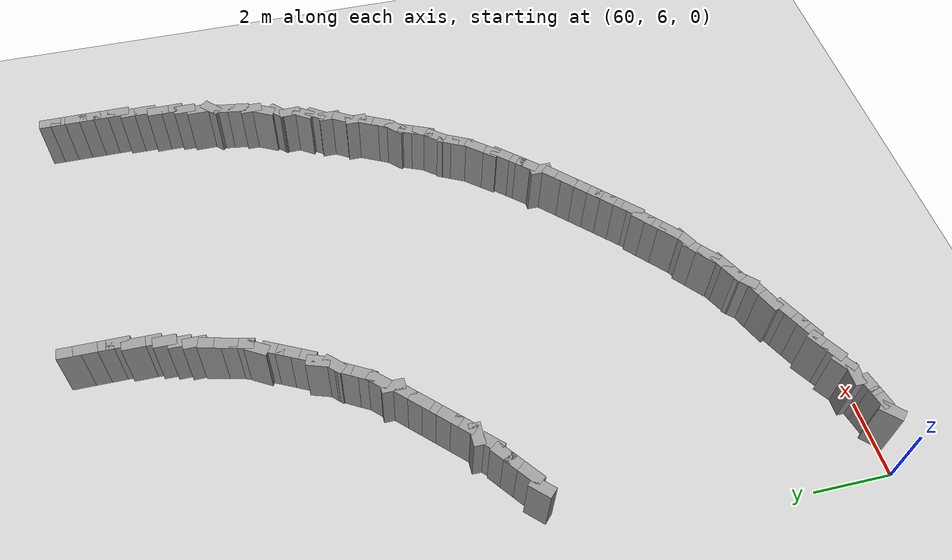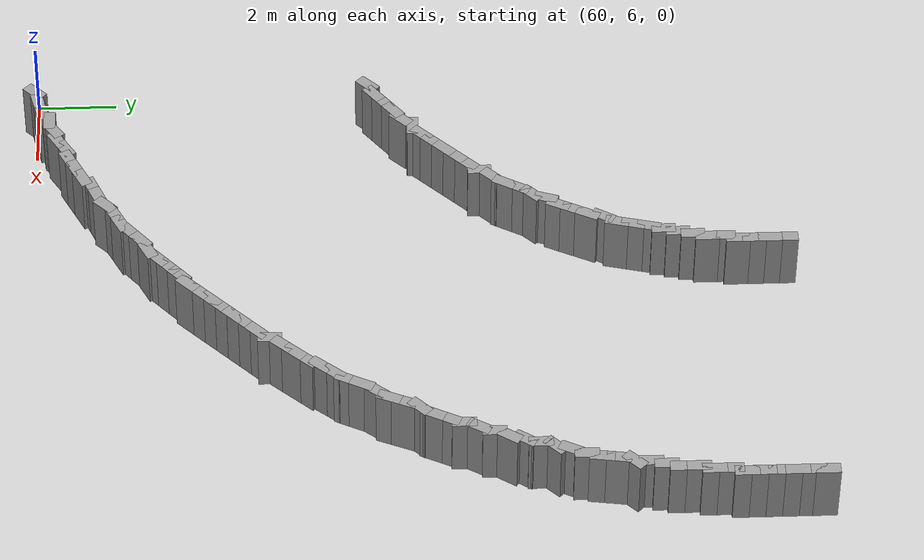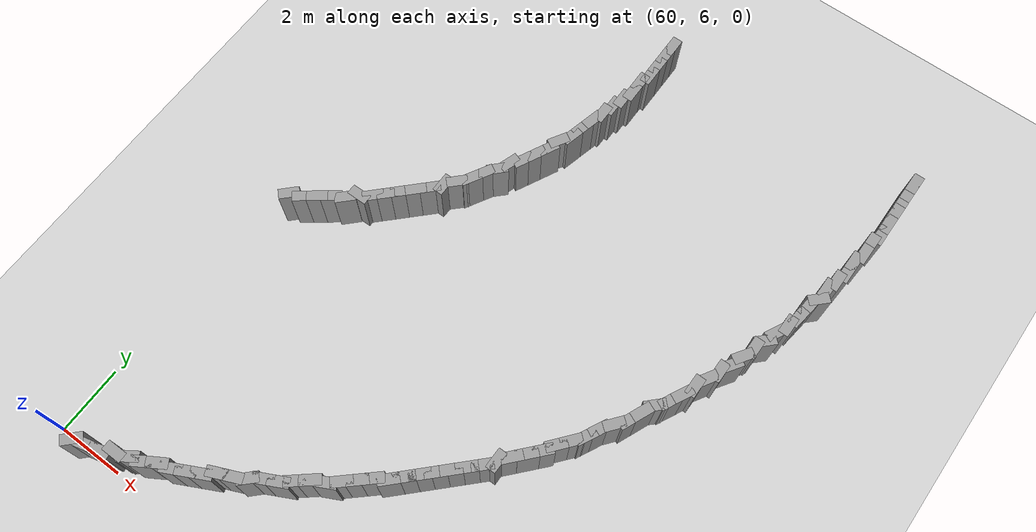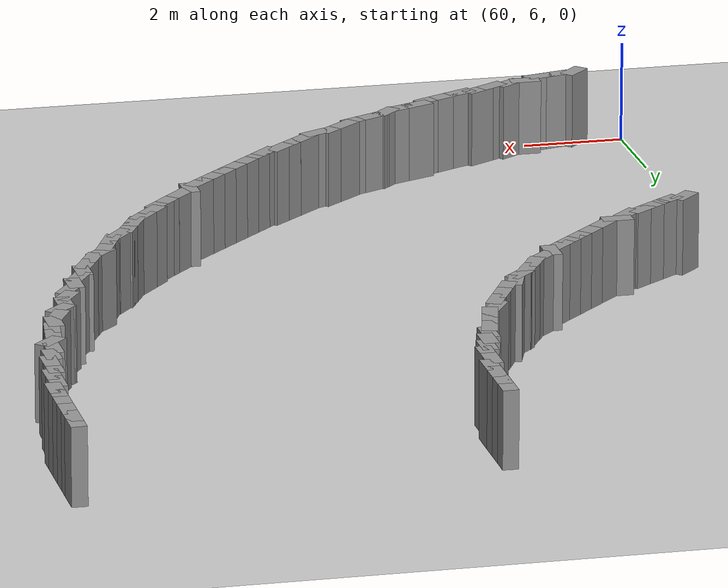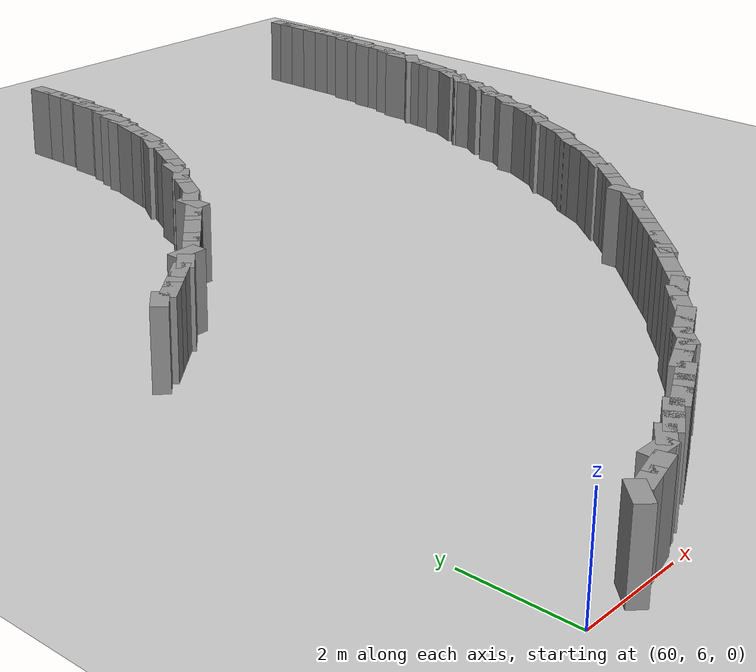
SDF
<sdf version="1.5">
 <world name="test_figure8">
  <include><uri>model://sun</uri></include>
  <include><uri>model://ground_plane</uri></include>
  <model name="curbL_195">
   <static>true</static>
   <pose>60.994 5.994 0.750 0 0 0.785</pose>
   <link name="link">
    <collision name="collision"><geometry><box><size>0.600 0.300 1.500</size></box></geometry></collision>
    <visual name="visual">
     <geometry><box><size>0.600 0.300 1.500</size></box></geometry>
     <material><ambient>0.6 0.6 0.6 1</ambient><diffuse>0.6 0.6 0.6 1</diffuse></material>
    </visual>
   </link>
  </model>
  <model name="curbL_196">
   <static>true</static>
   <pose>61.380 6.095 0.750 0 0 0.245</pose>
   <link name="link">
    <collision name="collision"><geometry><box><size>0.600 0.300 1.500</size></box></geometry></collision>
    <visual name="visual">
     <geometry><box><size>0.600 0.300 1.500</size></box></geometry>
     <material><ambient>0.6 0.6 0.6 1</ambient><diffuse>0.6 0.6 0.6 1</diffuse></material>
    </visual>
   </link>
  </model>
  <model name="curbL_197">
   <static>true</static>
   <pose>61.768 6.192 0.750 0 0 0.245</pose>
   <link name="link">
    <collision name="collision"><geometry><box><size>0.600 0.300 1.500</size></box></geometry></collision>
    <visual name="visual">
     <geometry><box><size>0.600 0.300 1.500</size></box></geometry>
     <material><ambient>0.6 0.6 0.6 1</ambient><diffuse>0.6 0.6 0.6 1</diffuse></material>
    </visual>
   </link>
  </model>
  <model name="curbL_198">
   <static>true</static>
   <pose>62.106 6.400 0.750 0 0 0.000</pose>
   <link name="link">
    <collision name="collision"><geometry><box><size>0.600 0.300 1.500</size></box></geometry></collision>
    <visual name="visual">
     <geometry><box><size>0.600 0.300 1.500</size></box></geometry>
     <material><ambient>0.6 0.6 0.6 1</ambient><diffuse>0.6 0.6 0.6 1</diffuse></material>
    </visual>
   </link>
  </model>
  <model name="curbL_199">
   <static>true</static>
   <pose>62.472 6.514 0.750 0 0 0.588</pose>
   <link name="link">
    <collision name="collision"><geometry><box><size>0.600 0.300 1.500</size></box></geometry></collision>
    <visual name="visual">
     <geometry><box><size>0.600 0.300 1.500</size></box></geometry>
     <material><ambient>0.6 0.6 0.6 1</ambient><diffuse>0.6 0.6 0.6 1</diffuse></material>
    </visual>
   </link>
  </model>
  <model name="curbL_200">
   <static>true</static>
   <pose>62.839 6.623 0.750 0 0 0.540</pose>
   <link name="link">
    <collision name="collision"><geometry><box><size>0.600 0.300 1.500</size></box></geometry></collision>
    <visual name="visual">
     <geometry><box><size>0.600 0.300 1.500</size></box></geometry>
     <material><ambient>0.6 0.6 0.6 1</ambient><diffuse>0.6 0.6 0.6 1</diffuse></material>
    </visual>
   </link>
  </model>
  <model name="curbL_201">
   <static>true</static>
   <pose>63.182 6.829 0.750 0 0 0.540</pose>
   <link name="link">
    <collision name="collision"><geometry><box><size>0.600 0.300 1.500</size></box></geometry></collision>
    <visual name="visual">
     <geometry><box><size>0.600 0.300 1.500</size></box></geometry>
     <material><ambient>0.6 0.6 0.6 1</ambient><diffuse>0.6 0.6 0.6 1</diffuse></material>
    </visual>
   </link>
  </model>
  <model name="curbL_202">
   <static>true</static>
   <pose>63.556 6.928 0.750 0 0 0.464</pose>
   <link name="link">
    <collision name="collision"><geometry><box><size>0.600 0.300 1.500</size></box></geometry></collision>
    <visual name="visual">
     <geometry><box><size>0.600 0.300 1.500</size></box></geometry>
     <material><ambient>0.6 0.6 0.6 1</ambient><diffuse>0.6 0.6 0.6 1</diffuse></material>
    </visual>
   </link>
  </model>
  <model name="curbL_203">
   <static>true</static>
   <pose>63.914 7.107 0.750 0 0 0.464</pose>
   <link name="link">
    <collision name="collision"><geometry><box><size>0.600 0.300 1.500</size></box></geometry></collision>
    <visual name="visual">
     <geometry><box><size>0.600 0.300 1.500</size></box></geometry>
     <material><ambient>0.6 0.6 0.6 1</ambient><diffuse>0.6 0.6 0.6 1</diffuse></material>
    </visual>
   </link>
  </model>
  <model name="curbL_204">
   <static>true</static>
   <pose>64.272 7.286 0.750 0 0 0.464</pose>
   <link name="link">
    <collision name="collision"><geometry><box><size>0.600 0.300 1.500</size></box></geometry></collision>
    <visual name="visual">
     <geometry><box><size>0.600 0.300 1.500</size></box></geometry>
     <material><ambient>0.6 0.6 0.6 1</ambient><diffuse>0.6 0.6 0.6 1</diffuse></material>
    </visual>
   </link>
  </model>
  <model name="curbL_205">
   <static>true</static>
   <pose>64.578 7.534 0.750 0 0 0.405</pose>
   <link name="link">
    <collision name="collision"><geometry><box><size>0.600 0.300 1.500</size></box></geometry></collision>
    <visual name="visual">
     <geometry><box><size>0.600 0.300 1.500</size></box></geometry>
     <material><ambient>0.6 0.6 0.6 1</ambient><diffuse>0.6 0.6 0.6 1</diffuse></material>
    </visual>
   </link>
  </model>
  <model name="curbL_206">
   <static>true</static>
   <pose>64.946 7.691 0.750 0 0 0.405</pose>
   <link name="link">
    <collision name="collision"><geometry><box><size>0.600 0.300 1.500</size></box></geometry></collision>
    <visual name="visual">
     <geometry><box><size>0.600 0.300 1.500</size></box></geometry>
     <material><ambient>0.6 0.6 0.6 1</ambient><diffuse>0.6 0.6 0.6 1</diffuse></material>
    </visual>
   </link>
  </model>
  <model name="curbL_207">
   <static>true</static>
   <pose>65.287 7.887 0.750 0 0 0.785</pose>
   <link name="link">
    <collision name="collision"><geometry><box><size>0.600 0.300 1.500</size></box></geometry></collision>
    <visual name="visual">
     <geometry><box><size>0.600 0.300 1.500</size></box></geometry>
     <material><ambient>0.6 0.6 0.6 1</ambient><diffuse>0.6 0.6 0.6 1</diffuse></material>
    </visual>
   </link>
  </model>
  <model name="curbL_208">
   <static>true</static>
   <pose>65.615 8.108 0.750 0 0 0.464</pose>
   <link name="link">
    <collision name="collision"><geometry><box><size>0.600 0.300 1.500</size></box></geometry></collision>
    <visual name="visual">
     <geometry><box><size>0.600 0.300 1.500</size></box></geometry>
     <material><ambient>0.6 0.6 0.6 1</ambient><diffuse>0.6 0.6 0.6 1</diffuse></material>
    </visual>
   </link>
  </model>
  <model name="curbL_209">
   <static>true</static>
   <pose>65.973 8.287 0.750 0 0 0.464</pose>
   <link name="link">
    <collision name="collision"><geometry><box><size>0.600 0.300 1.500</size></box></geometry></collision>
    <visual name="visual">
     <geometry><box><size>0.600 0.300 1.500</size></box></geometry>
     <material><ambient>0.6 0.6 0.6 1</ambient><diffuse>0.6 0.6 0.6 1</diffuse></material>
    </visual>
   </link>
  </model>
  <model name="curbL_210">
   <static>true</static>
   <pose>66.284 8.537 0.750 0 0 0.695</pose>
   <link name="link">
    <collision name="collision"><geometry><box><size>0.600 0.300 1.500</size></box></geometry></collision>
    <visual name="visual">
     <geometry><box><size>0.600 0.300 1.500</size></box></geometry>
     <material><ambient>0.6 0.6 0.6 1</ambient><diffuse>0.6 0.6 0.6 1</diffuse></material>
    </visual>
   </link>
  </model>
  <model name="curbL_211">
   <static>true</static>
   <pose>66.592 8.793 0.750 0 0 0.695</pose>
   <link name="link">
    <collision name="collision"><geometry><box><size>0.600 0.300 1.500</size></box></geometry></collision>
    <visual name="visual">
     <geometry><box><size>0.600 0.300 1.500</size></box></geometry>
     <material><ambient>0.6 0.6 0.6 1</ambient><diffuse>0.6 0.6 0.6 1</diffuse></material>
    </visual>
   </link>
  </model>
  <model name="curbL_212">
   <static>true</static>
   <pose>66.948 8.974 0.750 0 0 0.464</pose>
   <link name="link">
    <collision name="collision"><geometry><box><size>0.600 0.300 1.500</size></box></geometry></collision>
    <visual name="visual">
     <geometry><box><size>0.600 0.300 1.500</size></box></geometry>
     <material><ambient>0.6 0.6 0.6 1</ambient><diffuse>0.6 0.6 0.6 1</diffuse></material>
    </visual>
   </link>
  </model>
  <model name="curbL_213">
   <static>true</static>
   <pose>67.254 9.229 0.750 0 0 0.733</pose>
   <link name="link">
    <collision name="collision"><geometry><box><size>0.600 0.300 1.500</size></box></geometry></collision>
    <visual name="visual">
     <geometry><box><size>0.600 0.300 1.500</size></box></geometry>
     <material><ambient>0.6 0.6 0.6 1</ambient><diffuse>0.6 0.6 0.6 1</diffuse></material>
    </visual>
   </link>
  </model>
  <model name="curbL_214">
   <static>true</static>
   <pose>67.551 9.496 0.750 0 0 0.733</pose>
   <link name="link">
    <collision name="collision"><geometry><box><size>0.600 0.300 1.500</size></box></geometry></collision>
    <visual name="visual">
     <geometry><box><size>0.600 0.300 1.500</size></box></geometry>
     <material><ambient>0.6 0.6 0.6 1</ambient><diffuse>0.6 0.6 0.6 1</diffuse></material>
    </visual>
   </link>
  </model>
  <model name="curbL_215">
   <static>true</static>
   <pose>67.849 9.764 0.750 0 0 0.733</pose>
   <link name="link">
    <collision name="collision"><geometry><box><size>0.600 0.300 1.500</size></box></geometry></collision>
    <visual name="visual">
     <geometry><box><size>0.600 0.300 1.500</size></box></geometry>
     <material><ambient>0.6 0.6 0.6 1</ambient><diffuse>0.6 0.6 0.6 1</diffuse></material>
    </visual>
   </link>
  </model>
  <model name="curbL_216">
   <static>true</static>
   <pose>68.168 9.968 0.750 0 0 0.785</pose>
   <link name="link">
    <collision name="collision"><geometry><box><size>0.600 0.300 1.500</size></box></geometry></collision>
    <visual name="visual">
     <geometry><box><size>0.600 0.300 1.500</size></box></geometry>
     <material><ambient>0.6 0.6 0.6 1</ambient><diffuse>0.6 0.6 0.6 1</diffuse></material>
    </visual>
   </link>
  </model>
  <model name="curbL_217">
   <static>true</static>
   <pose>68.451 10.251 0.750 0 0 0.785</pose>
   <link name="link">
    <collision name="collision"><geometry><box><size>0.600 0.300 1.500</size></box></geometry></collision>
    <visual name="visual">
     <geometry><box><size>0.600 0.300 1.500</size></box></geometry>
     <material><ambient>0.6 0.6 0.6 1</ambient><diffuse>0.6 0.6 0.6 1</diffuse></material>
    </visual>
   </link>
  </model>
  <model name="curbL_218">
   <static>true</static>
   <pose>68.734 10.534 0.750 0 0 0.785</pose>
   <link name="link">
    <collision name="collision"><geometry><box><size>0.600 0.300 1.500</size></box></geometry></collision>
    <visual name="visual">
     <geometry><box><size>0.600 0.300 1.500</size></box></geometry>
     <material><ambient>0.6 0.6 0.6 1</ambient><diffuse>0.6 0.6 0.6 1</diffuse></material>
    </visual>
   </link>
  </model>
  <model name="curbL_219">
   <static>true</static>
   <pose>69.017 10.817 0.750 0 0 0.785</pose>
   <link name="link">
    <collision name="collision"><geometry><box><size>0.600 0.300 1.500</size></box></geometry></collision>
    <visual name="visual">
     <geometry><box><size>0.600 0.300 1.500</size></box></geometry>
     <material><ambient>0.6 0.6 0.6 1</ambient><diffuse>0.6 0.6 0.6 1</diffuse></material>
    </visual>
   </link>
  </model>
  <model name="curbL_220">
   <static>true</static>
   <pose>69.300 11.100 0.750 0 0 0.785</pose>
   <link name="link">
    <collision name="collision"><geometry><box><size>0.600 0.300 1.500</size></box></geometry></collision>
    <visual name="visual">
     <geometry><box><size>0.600 0.300 1.500</size></box></geometry>
     <material><ambient>0.6 0.6 0.6 1</ambient><diffuse>0.6 0.6 0.6 1</diffuse></material>
    </visual>
   </link>
  </model>
  <model name="curbL_221">
   <static>true</static>
   <pose>69.582 11.382 0.750 0 0 0.785</pose>
   <link name="link">
    <collision name="collision"><geometry><box><size>0.600 0.300 1.500</size></box></geometry></collision>
    <visual name="visual">
     <geometry><box><size>0.600 0.300 1.500</size></box></geometry>
     <material><ambient>0.6 0.6 0.6 1</ambient><diffuse>0.6 0.6 0.6 1</diffuse></material>
    </visual>
   </link>
  </model>
  <model name="curbL_222">
   <static>true</static>
   <pose>69.865 11.665 0.750 0 0 0.785</pose>
   <link name="link">
    <collision name="collision"><geometry><box><size>0.600 0.300 1.500</size></box></geometry></collision>
    <visual name="visual">
     <geometry><box><size>0.600 0.300 1.500</size></box></geometry>
     <material><ambient>0.6 0.6 0.6 1</ambient><diffuse>0.6 0.6 0.6 1</diffuse></material>
    </visual>
   </link>
  </model>
  <model name="curbL_223">
   <static>true</static>
   <pose>70.100 11.968 0.750 0 0 1.571</pose>
   <link name="link">
    <collision name="collision"><geometry><box><size>0.600 0.300 1.500</size></box></geometry></collision>
    <visual name="visual">
     <geometry><box><size>0.600 0.300 1.500</size></box></geometry>
     <material><ambient>0.6 0.6 0.6 1</ambient><diffuse>0.6 0.6 0.6 1</diffuse></material>
    </visual>
   </link>
  </model>
  <model name="curbL_224">
   <static>true</static>
   <pose>70.346 12.274 0.750 0 0 0.838</pose>
   <link name="link">
    <collision name="collision"><geometry><box><size>0.600 0.300 1.500</size></box></geometry></collision>
    <visual name="visual">
     <geometry><box><size>0.600 0.300 1.500</size></box></geometry>
     <material><ambient>0.6 0.6 0.6 1</ambient><diffuse>0.6 0.6 0.6 1</diffuse></material>
    </visual>
   </link>
  </model>
  <model name="curbL_225">
   <static>true</static>
   <pose>70.614 12.571 0.750 0 0 0.838</pose>
   <link name="link">
    <collision name="collision"><geometry><box><size>0.600 0.300 1.500</size></box></geometry></collision>
    <visual name="visual">
     <geometry><box><size>0.600 0.300 1.500</size></box></geometry>
     <material><ambient>0.6 0.6 0.6 1</ambient><diffuse>0.6 0.6 0.6 1</diffuse></material>
    </visual>
   </link>
  </model>
  <model name="curbL_226">
   <static>true</static>
   <pose>70.881 12.868 0.750 0 0 0.838</pose>
   <link name="link">
    <collision name="collision"><geometry><box><size>0.600 0.300 1.500</size></box></geometry></collision>
    <visual name="visual">
     <geometry><box><size>0.600 0.300 1.500</size></box></geometry>
     <material><ambient>0.6 0.6 0.6 1</ambient><diffuse>0.6 0.6 0.6 1</diffuse></material>
    </visual>
   </link>
  </model>
  <model name="curbL_227">
   <static>true</static>
   <pose>71.079 13.194 0.750 0 0 0.876</pose>
   <link name="link">
    <collision name="collision"><geometry><box><size>0.600 0.300 1.500</size></box></geometry></collision>
    <visual name="visual">
     <geometry><box><size>0.600 0.300 1.500</size></box></geometry>
     <material><ambient>0.6 0.6 0.6 1</ambient><diffuse>0.6 0.6 0.6 1</diffuse></material>
    </visual>
   </link>
  </model>
  <model name="curbL_228">
   <static>true</static>
   <pose>71.335 13.502 0.750 0 0 0.876</pose>
   <link name="link">
    <collision name="collision"><geometry><box><size>0.600 0.300 1.500</size></box></geometry></collision>
    <visual name="visual">
     <geometry><box><size>0.600 0.300 1.500</size></box></geometry>
     <material><ambient>0.6 0.6 0.6 1</ambient><diffuse>0.6 0.6 0.6 1</diffuse></material>
    </visual>
   </link>
  </model>
  <model name="curbL_229">
   <static>true</static>
   <pose>71.563 13.827 0.750 0 0 1.107</pose>
   <link name="link">
    <collision name="collision"><geometry><box><size>0.600 0.300 1.500</size></box></geometry></collision>
    <visual name="visual">
     <geometry><box><size>0.600 0.300 1.500</size></box></geometry>
     <material><ambient>0.6 0.6 0.6 1</ambient><diffuse>0.6 0.6 0.6 1</diffuse></material>
    </visual>
   </link>
  </model>
  <model name="curbL_230">
   <static>true</static>
   <pose>71.742 14.184 0.750 0 0 1.107</pose>
   <link name="link">
    <collision name="collision"><geometry><box><size>0.600 0.300 1.500</size></box></geometry></collision>
    <visual name="visual">
     <geometry><box><size>0.600 0.300 1.500</size></box></geometry>
     <material><ambient>0.6 0.6 0.6 1</ambient><diffuse>0.6 0.6 0.6 1</diffuse></material>
    </visual>
   </link>
  </model>
  <model name="curbL_231">
   <static>true</static>
   <pose>71.969 14.511 0.750 0 0 0.896</pose>
   <link name="link">
    <collision name="collision"><geometry><box><size>0.600 0.300 1.500</size></box></geometry></collision>
    <visual name="visual">
     <geometry><box><size>0.600 0.300 1.500</size></box></geometry>
     <material><ambient>0.6 0.6 0.6 1</ambient><diffuse>0.6 0.6 0.6 1</diffuse></material>
    </visual>
   </link>
  </model>
  <model name="curbL_232">
   <static>true</static>
   <pose>72.212 14.828 0.750 0 0 1.166</pose>
   <link name="link">
    <collision name="collision"><geometry><box><size>0.600 0.300 1.500</size></box></geometry></collision>
    <visual name="visual">
     <geometry><box><size>0.600 0.300 1.500</size></box></geometry>
     <material><ambient>0.6 0.6 0.6 1</ambient><diffuse>0.6 0.6 0.6 1</diffuse></material>
    </visual>
   </link>
  </model>
  <model name="curbL_233">
   <static>true</static>
   <pose>72.370 15.196 0.750 0 0 1.166</pose>
   <link name="link">
    <collision name="collision"><geometry><box><size>0.600 0.300 1.500</size></box></geometry></collision>
    <visual name="visual">
     <geometry><box><size>0.600 0.300 1.500</size></box></geometry>
     <material><ambient>0.6 0.6 0.6 1</ambient><diffuse>0.6 0.6 0.6 1</diffuse></material>
    </visual>
   </link>
  </model>
  <model name="curbL_234">
   <static>true</static>
   <pose>72.549 15.549 0.750 0 0 0.785</pose>
   <link name="link">
    <collision name="collision"><geometry><box><size>0.600 0.300 1.500</size></box></geometry></collision>
    <visual name="visual">
     <geometry><box><size>0.600 0.300 1.500</size></box></geometry>
     <material><ambient>0.6 0.6 0.6 1</ambient><diffuse>0.6 0.6 0.6 1</diffuse></material>
    </visual>
   </link>
  </model>
  <model name="curbL_235">
   <static>true</static>
   <pose>72.783 15.866 0.750 0 0 1.107</pose>
   <link name="link">
    <collision name="collision"><geometry><box><size>0.600 0.300 1.500</size></box></geometry></collision>
    <visual name="visual">
     <geometry><box><size>0.600 0.300 1.500</size></box></geometry>
     <material><ambient>0.6 0.6 0.6 1</ambient><diffuse>0.6 0.6 0.6 1</diffuse></material>
    </visual>
   </link>
  </model>
  <model name="curbL_236">
   <static>true</static>
   <pose>72.962 16.224 0.750 0 0 1.107</pose>
   <link name="link">
    <collision name="collision"><geometry><box><size>0.600 0.300 1.500</size></box></geometry></collision>
    <visual name="visual">
     <geometry><box><size>0.600 0.300 1.500</size></box></geometry>
     <material><ambient>0.6 0.6 0.6 1</ambient><diffuse>0.6 0.6 0.6 1</diffuse></material>
    </visual>
   </link>
  </model>
  <model name="curbL_237">
   <static>true</static>
   <pose>73.100 16.592 0.750 0 0 1.571</pose>
   <link name="link">
    <collision name="collision"><geometry><box><size>0.600 0.300 1.500</size></box></geometry></collision>
    <visual name="visual">
     <geometry><box><size>0.600 0.300 1.500</size></box></geometry>
     <material><ambient>0.6 0.6 0.6 1</ambient><diffuse>0.6 0.6 0.6 1</diffuse></material>
    </visual>
   </link>
  </model>
  <model name="curbL_238">
   <static>true</static>
   <pose>73.250 16.950 0.750 0 0 1.030</pose>
   <link name="link">
    <collision name="collision"><geometry><box><size>0.600 0.300 1.500</size></box></geometry></collision>
    <visual name="visual">
     <geometry><box><size>0.600 0.300 1.500</size></box></geometry>
     <material><ambient>0.6 0.6 0.6 1</ambient><diffuse>0.6 0.6 0.6 1</diffuse></material>
    </visual>
   </link>
  </model>
  <model name="curbL_239">
   <static>true</static>
   <pose>73.400 17.309 0.750 0 0 1.571</pose>
   <link name="link">
    <collision name="collision"><geometry><box><size>0.600 0.300 1.500</size></box></geometry></collision>
    <visual name="visual">
     <geometry><box><size>0.600 0.300 1.500</size></box></geometry>
     <material><ambient>0.6 0.6 0.6 1</ambient><diffuse>0.6 0.6 0.6 1</diffuse></material>
    </visual>
   </link>
  </model>
  <model name="curbL_240">
   <static>true</static>
   <pose>73.571 17.657 0.750 0 0 0.983</pose>
   <link name="link">
    <collision name="collision"><geometry><box><size>0.600 0.300 1.500</size></box></geometry></collision>
    <visual name="visual">
     <geometry><box><size>0.600 0.300 1.500</size></box></geometry>
     <material><ambient>0.6 0.6 0.6 1</ambient><diffuse>0.6 0.6 0.6 1</diffuse></material>
    </visual>
   </link>
  </model>
  <model name="curbL_241">
   <static>true</static>
   <pose>73.682 18.023 0.750 0 0 0.983</pose>
   <link name="link">
    <collision name="collision"><geometry><box><size>0.600 0.300 1.500</size></box></geometry></collision>
    <visual name="visual">
     <geometry><box><size>0.600 0.300 1.500</size></box></geometry>
     <material><ambient>0.6 0.6 0.6 1</ambient><diffuse>0.6 0.6 0.6 1</diffuse></material>
    </visual>
   </link>
  </model>
  <model name="curbL_242">
   <static>true</static>
   <pose>73.800 18.387 0.750 0 0 1.571</pose>
   <link name="link">
    <collision name="collision"><geometry><box><size>0.600 0.300 1.500</size></box></geometry></collision>
    <visual name="visual">
     <geometry><box><size>0.600 0.300 1.500</size></box></geometry>
     <material><ambient>0.6 0.6 0.6 1</ambient><diffuse>0.6 0.6 0.6 1</diffuse></material>
    </visual>
   </link>
  </model>
  <model name="curbL_243">
   <static>true</static>
   <pose>73.933 18.733 0.750 0 0 0.785</pose>
   <link name="link">
    <collision name="collision"><geometry><box><size>0.600 0.300 1.500</size></box></geometry></collision>
    <visual name="visual">
     <geometry><box><size>0.600 0.300 1.500</size></box></geometry>
     <material><ambient>0.6 0.6 0.6 1</ambient><diffuse>0.6 0.6 0.6 1</diffuse></material>
    </visual>
   </link>
  </model>
  <model name="curbL_244">
   <static>true</static>
   <pose>74.047 19.094 0.750 0 0 1.107</pose>
   <link name="link">
    <collision name="collision"><geometry><box><size>0.600 0.300 1.500</size></box></geometry></collision>
    <visual name="visual">
     <geometry><box><size>0.600 0.300 1.500</size></box></geometry>
     <material><ambient>0.6 0.6 0.6 1</ambient><diffuse>0.6 0.6 0.6 1</diffuse></material>
    </visual>
   </link>
  </model>
  <model name="curbL_245">
   <static>true</static>
   <pose>74.200 19.457 0.750 0 0 1.571</pose>
   <link name="link">
    <collision name="collision"><geometry><box><size>0.600 0.300 1.500</size></box></geometry></collision>
    <visual name="visual">
     <geometry><box><size>0.600 0.300 1.500</size></box></geometry>
     <material><ambient>0.6 0.6 0.6 1</ambient><diffuse>0.6 0.6 0.6 1</diffuse></material>
    </visual>
   </link>
  </model>
  <model name="curbL_246">
   <static>true</static>
   <pose>74.302 19.816 0.750 0 0 1.429</pose>
   <link name="link">
    <collision name="collision"><geometry><box><size>0.600 0.300 1.500</size></box></geometry></collision>
    <visual name="visual">
     <geometry><box><size>0.600 0.300 1.500</size></box></geometry>
     <material><ambient>0.6 0.6 0.6 1</ambient><diffuse>0.6 0.6 0.6 1</diffuse></material>
    </visual>
   </link>
  </model>
  <model name="curbL_247">
   <static>true</static>
   <pose>74.359 20.212 0.750 0 0 1.429</pose>
   <link name="link">
    <collision name="collision"><geometry><box><size>0.600 0.300 1.500</size></box></geometry></collision>
    <visual name="visual">
     <geometry><box><size>0.600 0.300 1.500</size></box></geometry>
     <material><ambient>0.6 0.6 0.6 1</ambient><diffuse>0.6 0.6 0.6 1</diffuse></material>
    </visual>
   </link>
  </model>
  <model name="curbL_248">
   <static>true</static>
   <pose>74.477 20.577 0.750 0 0 0.785</pose>
   <link name="link">
    <collision name="collision"><geometry><box><size>0.600 0.300 1.500</size></box></geometry></collision>
    <visual name="visual">
     <geometry><box><size>0.600 0.300 1.500</size></box></geometry>
     <material><ambient>0.6 0.6 0.6 1</ambient><diffuse>0.6 0.6 0.6 1</diffuse></material>
    </visual>
   </link>
  </model>
  <model name="curbL_249">
   <static>true</static>
   <pose>74.500 20.967 0.750 0 0 1.571</pose>
   <link name="link">
    <collision name="collision"><geometry><box><size>0.600 0.300 1.500</size></box></geometry></collision>
    <visual name="visual">
     <geometry><box><size>0.600 0.300 1.500</size></box></geometry>
     <material><ambient>0.6 0.6 0.6 1</ambient><diffuse>0.6 0.6 0.6 1</diffuse></material>
    </visual>
   </link>
  </model>
  <model name="curbL_250">
   <static>true</static>
   <pose>74.600 21.326 0.750 0 0 1.571</pose>
   <link name="link">
    <collision name="collision"><geometry><box><size>0.600 0.300 1.500</size></box></geometry></collision>
    <visual name="visual">
     <geometry><box><size>0.600 0.300 1.500</size></box></geometry>
     <material><ambient>0.6 0.6 0.6 1</ambient><diffuse>0.6 0.6 0.6 1</diffuse></material>
    </visual>
   </link>
  </model>
  <model name="curbL_251">
   <static>true</static>
   <pose>74.700 21.685 0.750 0 0 1.571</pose>
   <link name="link">
    <collision name="collision"><geometry><box><size>0.600 0.300 1.500</size></box></geometry></collision>
    <visual name="visual">
     <geometry><box><size>0.600 0.300 1.500</size></box></geometry>
     <material><ambient>0.6 0.6 0.6 1</ambient><diffuse>0.6 0.6 0.6 1</diffuse></material>
    </visual>
   </link>
  </model>
  <model name="curbL_252">
   <static>true</static>
   <pose>74.700 22.085 0.750 0 0 1.571</pose>
   <link name="link">
    <collision name="collision"><geometry><box><size>0.600 0.300 1.500</size></box></geometry></collision>
    <visual name="visual">
     <geometry><box><size>0.600 0.300 1.500</size></box></geometry>
     <material><ambient>0.6 0.6 0.6 1</ambient><diffuse>0.6 0.6 0.6 1</diffuse></material>
    </visual>
   </link>
  </model>
  <model name="curbL_253">
   <static>true</static>
   <pose>74.800 22.443 0.750 0 0 1.571</pose>
   <link name="link">
    <collision name="collision"><geometry><box><size>0.600 0.300 1.500</size></box></geometry></collision>
    <visual name="visual">
     <geometry><box><size>0.600 0.300 1.500</size></box></geometry>
     <material><ambient>0.6 0.6 0.6 1</ambient><diffuse>0.6 0.6 0.6 1</diffuse></material>
    </visual>
   </link>
  </model>
  <model name="curbL_254">
   <static>true</static>
   <pose>74.800 22.843 0.750 0 0 1.571</pose>
   <link name="link">
    <collision name="collision"><geometry><box><size>0.600 0.300 1.500</size></box></geometry></collision>
    <visual name="visual">
     <geometry><box><size>0.600 0.300 1.500</size></box></geometry>
     <material><ambient>0.6 0.6 0.6 1</ambient><diffuse>0.6 0.6 0.6 1</diffuse></material>
    </visual>
   </link>
  </model>
  <model name="curbL_255">
   <static>true</static>
   <pose>74.900 23.202 0.750 0 0 1.571</pose>
   <link name="link">
    <collision name="collision"><geometry><box><size>0.600 0.300 1.500</size></box></geometry></collision>
    <visual name="visual">
     <geometry><box><size>0.600 0.300 1.500</size></box></geometry>
     <material><ambient>0.6 0.6 0.6 1</ambient><diffuse>0.6 0.6 0.6 1</diffuse></material>
    </visual>
   </link>
  </model>
  <model name="curbL_256">
   <static>true</static>
   <pose>74.900 23.602 0.750 0 0 1.571</pose>
   <link name="link">
    <collision name="collision"><geometry><box><size>0.600 0.300 1.500</size></box></geometry></collision>
    <visual name="visual">
     <geometry><box><size>0.600 0.300 1.500</size></box></geometry>
     <material><ambient>0.6 0.6 0.6 1</ambient><diffuse>0.6 0.6 0.6 1</diffuse></material>
    </visual>
   </link>
  </model>
  <model name="curbL_257">
   <static>true</static>
   <pose>74.900 24.002 0.750 0 0 1.571</pose>
   <link name="link">
    <collision name="collision"><geometry><box><size>0.600 0.300 1.500</size></box></geometry></collision>
    <visual name="visual">
     <geometry><box><size>0.600 0.300 1.500</size></box></geometry>
     <material><ambient>0.6 0.6 0.6 1</ambient><diffuse>0.6 0.6 0.6 1</diffuse></material>
    </visual>
   </link>
  </model>
  <model name="curbL_258">
   <static>true</static>
   <pose>74.900 24.402 0.750 0 0 1.571</pose>
   <link name="link">
    <collision name="collision"><geometry><box><size>0.600 0.300 1.500</size></box></geometry></collision>
    <visual name="visual">
     <geometry><box><size>0.600 0.300 1.500</size></box></geometry>
     <material><ambient>0.6 0.6 0.6 1</ambient><diffuse>0.6 0.6 0.6 1</diffuse></material>
    </visual>
   </link>
  </model>
  <model name="curbL_259">
   <static>true</static>
   <pose>74.900 24.802 0.750 0 0 1.571</pose>
   <link name="link">
    <collision name="collision"><geometry><box><size>0.600 0.300 1.500</size></box></geometry></collision>
    <visual name="visual">
     <geometry><box><size>0.600 0.300 1.500</size></box></geometry>
     <material><ambient>0.6 0.6 0.6 1</ambient><diffuse>0.6 0.6 0.6 1</diffuse></material>
    </visual>
   </link>
  </model>
  <model name="curbL_260">
   <static>true</static>
   <pose>74.900 25.119 0.750 0 0 1.571</pose>
   <link name="link">
    <collision name="collision"><geometry><box><size>0.600 0.300 1.500</size></box></geometry></collision>
    <visual name="visual">
     <geometry><box><size>0.600 0.300 1.500</size></box></geometry>
     <material><ambient>0.6 0.6 0.6 1</ambient><diffuse>0.6 0.6 0.6 1</diffuse></material>
    </visual>
   </link>
  </model>
  <model name="curbR_49">
   <static>true</static>
   <pose>67.000 24.876 0.750 0 0 -1.571</pose>
   <link name="link">
    <collision name="collision"><geometry><box><size>0.600 0.300 1.500</size></box></geometry></collision>
    <visual name="visual">
     <geometry><box><size>0.600 0.300 1.500</size></box></geometry>
     <material><ambient>0.6 0.6 0.6 1</ambient><diffuse>0.6 0.6 0.6 1</diffuse></material>
    </visual>
   </link>
  </model>
  <model name="curbR_50">
   <static>true</static>
   <pose>67.000 24.476 0.750 0 0 -1.571</pose>
   <link name="link">
    <collision name="collision"><geometry><box><size>0.600 0.300 1.500</size></box></geometry></collision>
    <visual name="visual">
     <geometry><box><size>0.600 0.300 1.500</size></box></geometry>
     <material><ambient>0.6 0.6 0.6 1</ambient><diffuse>0.6 0.6 0.6 1</diffuse></material>
    </visual>
   </link>
  </model>
  <model name="curbR_51">
   <static>true</static>
   <pose>67.000 24.076 0.750 0 0 -1.571</pose>
   <link name="link">
    <collision name="collision"><geometry><box><size>0.600 0.300 1.500</size></box></geometry></collision>
    <visual name="visual">
     <geometry><box><size>0.600 0.300 1.500</size></box></geometry>
     <material><ambient>0.6 0.6 0.6 1</ambient><diffuse>0.6 0.6 0.6 1</diffuse></material>
    </visual>
   </link>
  </model>
  <model name="curbR_52">
   <static>true</static>
   <pose>67.000 23.676 0.750 0 0 -1.571</pose>
   <link name="link">
    <collision name="collision"><geometry><box><size>0.600 0.300 1.500</size></box></geometry></collision>
    <visual name="visual">
     <geometry><box><size>0.600 0.300 1.500</size></box></geometry>
     <material><ambient>0.6 0.6 0.6 1</ambient><diffuse>0.6 0.6 0.6 1</diffuse></material>
    </visual>
   </link>
  </model>
  <model name="curbR_53">
   <static>true</static>
   <pose>66.900 23.317 0.750 0 0 -1.571</pose>
   <link name="link">
    <collision name="collision"><geometry><box><size>0.600 0.300 1.500</size></box></geometry></collision>
    <visual name="visual">
     <geometry><box><size>0.600 0.300 1.500</size></box></geometry>
     <material><ambient>0.6 0.6 0.6 1</ambient><diffuse>0.6 0.6 0.6 1</diffuse></material>
    </visual>
   </link>
  </model>
  <model name="curbR_54">
   <static>true</static>
   <pose>66.900 22.917 0.750 0 0 -1.571</pose>
   <link name="link">
    <collision name="collision"><geometry><box><size>0.600 0.300 1.500</size></box></geometry></collision>
    <visual name="visual">
     <geometry><box><size>0.600 0.300 1.500</size></box></geometry>
     <material><ambient>0.6 0.6 0.6 1</ambient><diffuse>0.6 0.6 0.6 1</diffuse></material>
    </visual>
   </link>
  </model>
  <model name="curbR_55">
   <static>true</static>
   <pose>66.800 22.559 0.750 0 0 -1.571</pose>
   <link name="link">
    <collision name="collision"><geometry><box><size>0.600 0.300 1.500</size></box></geometry></collision>
    <visual name="visual">
     <geometry><box><size>0.600 0.300 1.500</size></box></geometry>
     <material><ambient>0.6 0.6 0.6 1</ambient><diffuse>0.6 0.6 0.6 1</diffuse></material>
    </visual>
   </link>
  </model>
  <model name="curbR_56">
   <static>true</static>
   <pose>66.700 22.200 0.750 0 0 -1.571</pose>
   <link name="link">
    <collision name="collision"><geometry><box><size>0.600 0.300 1.500</size></box></geometry></collision>
    <visual name="visual">
     <geometry><box><size>0.600 0.300 1.500</size></box></geometry>
     <material><ambient>0.6 0.6 0.6 1</ambient><diffuse>0.6 0.6 0.6 1</diffuse></material>
    </visual>
   </link>
  </model>
  <model name="curbR_57">
   <static>true</static>
   <pose>66.600 21.842 0.750 0 0 -1.571</pose>
   <link name="link">
    <collision name="collision"><geometry><box><size>0.600 0.300 1.500</size></box></geometry></collision>
    <visual name="visual">
     <geometry><box><size>0.600 0.300 1.500</size></box></geometry>
     <material><ambient>0.6 0.6 0.6 1</ambient><diffuse>0.6 0.6 0.6 1</diffuse></material>
    </visual>
   </link>
  </model>
  <model name="curbR_58">
   <static>true</static>
   <pose>66.496 21.484 0.750 0 0 -1.816</pose>
   <link name="link">
    <collision name="collision"><geometry><box><size>0.600 0.300 1.500</size></box></geometry></collision>
    <visual name="visual">
     <geometry><box><size>0.600 0.300 1.500</size></box></geometry>
     <material><ambient>0.6 0.6 0.6 1</ambient><diffuse>0.6 0.6 0.6 1</diffuse></material>
    </visual>
   </link>
  </model>
  <model name="curbR_59">
   <static>true</static>
   <pose>66.399 21.095 0.750 0 0 -1.816</pose>
   <link name="link">
    <collision name="collision"><geometry><box><size>0.600 0.300 1.500</size></box></geometry></collision>
    <visual name="visual">
     <geometry><box><size>0.600 0.300 1.500</size></box></geometry>
     <material><ambient>0.6 0.6 0.6 1</ambient><diffuse>0.6 0.6 0.6 1</diffuse></material>
    </visual>
   </link>
  </model>
  <model name="curbR_60">
   <static>true</static>
   <pose>66.302 20.707 0.750 0 0 -1.816</pose>
   <link name="link">
    <collision name="collision"><geometry><box><size>0.600 0.300 1.500</size></box></geometry></collision>
    <visual name="visual">
     <geometry><box><size>0.600 0.300 1.500</size></box></geometry>
     <material><ambient>0.6 0.6 0.6 1</ambient><diffuse>0.6 0.6 0.6 1</diffuse></material>
    </visual>
   </link>
  </model>
  <model name="curbR_61">
   <static>true</static>
   <pose>66.098 20.364 0.750 0 0 -2.111</pose>
   <link name="link">
    <collision name="collision"><geometry><box><size>0.600 0.300 1.500</size></box></geometry></collision>
    <visual name="visual">
     <geometry><box><size>0.600 0.300 1.500</size></box></geometry>
     <material><ambient>0.6 0.6 0.6 1</ambient><diffuse>0.6 0.6 0.6 1</diffuse></material>
    </visual>
   </link>
  </model>
  <model name="curbR_62">
   <static>true</static>
   <pose>65.996 19.992 0.750 0 0 -2.034</pose>
   <link name="link">
    <collision name="collision"><geometry><box><size>0.600 0.300 1.500</size></box></geometry></collision>
    <visual name="visual">
     <geometry><box><size>0.600 0.300 1.500</size></box></geometry>
     <material><ambient>0.6 0.6 0.6 1</ambient><diffuse>0.6 0.6 0.6 1</diffuse></material>
    </visual>
   </link>
  </model>
  <model name="curbR_63">
   <static>true</static>
   <pose>65.817 19.634 0.750 0 0 -2.034</pose>
   <link name="link">
    <collision name="collision"><geometry><box><size>0.600 0.300 1.500</size></box></geometry></collision>
    <visual name="visual">
     <geometry><box><size>0.600 0.300 1.500</size></box></geometry>
     <material><ambient>0.6 0.6 0.6 1</ambient><diffuse>0.6 0.6 0.6 1</diffuse></material>
    </visual>
   </link>
  </model>
  <model name="curbR_64">
   <static>true</static>
   <pose>65.638 19.276 0.750 0 0 -2.034</pose>
   <link name="link">
    <collision name="collision"><geometry><box><size>0.600 0.300 1.500</size></box></geometry></collision>
    <visual name="visual">
     <geometry><box><size>0.600 0.300 1.500</size></box></geometry>
     <material><ambient>0.6 0.6 0.6 1</ambient><diffuse>0.6 0.6 0.6 1</diffuse></material>
    </visual>
   </link>
  </model>
  <model name="curbR_65">
   <static>true</static>
   <pose>65.390 18.970 0.750 0 0 -1.893</pose>
   <link name="link">
    <collision name="collision"><geometry><box><size>0.600 0.300 1.500</size></box></geometry></collision>
    <visual name="visual">
     <geometry><box><size>0.600 0.300 1.500</size></box></geometry>
     <material><ambient>0.6 0.6 0.6 1</ambient><diffuse>0.6 0.6 0.6 1</diffuse></material>
    </visual>
   </link>
  </model>
  <model name="curbR_66">
   <static>true</static>
   <pose>65.218 18.618 0.750 0 0 -2.356</pose>
   <link name="link">
    <collision name="collision"><geometry><box><size>0.600 0.300 1.500</size></box></geometry></collision>
    <visual name="visual">
     <geometry><box><size>0.600 0.300 1.500</size></box></geometry>
     <material><ambient>0.6 0.6 0.6 1</ambient><diffuse>0.6 0.6 0.6 1</diffuse></material>
    </visual>
   </link>
  </model>
  <model name="curbR_67">
   <static>true</static>
   <pose>64.984 18.298 0.750 0 0 -2.090</pose>
   <link name="link">
    <collision name="collision"><geometry><box><size>0.600 0.300 1.500</size></box></geometry></collision>
    <visual name="visual">
     <geometry><box><size>0.600 0.300 1.500</size></box></geometry>
     <material><ambient>0.6 0.6 0.6 1</ambient><diffuse>0.6 0.6 0.6 1</diffuse></material>
    </visual>
   </link>
  </model>
  <model name="curbR_68">
   <static>true</static>
   <pose>64.786 17.950 0.750 0 0 -2.090</pose>
   <link name="link">
    <collision name="collision"><geometry><box><size>0.600 0.300 1.500</size></box></geometry></collision>
    <visual name="visual">
     <geometry><box><size>0.600 0.300 1.500</size></box></geometry>
     <material><ambient>0.6 0.6 0.6 1</ambient><diffuse>0.6 0.6 0.6 1</diffuse></material>
    </visual>
   </link>
  </model>
  <model name="curbR_69">
   <static>true</static>
   <pose>64.540 17.640 0.750 0 0 -2.356</pose>
   <link name="link">
    <collision name="collision"><geometry><box><size>0.600 0.300 1.500</size></box></geometry></collision>
    <visual name="visual">
     <geometry><box><size>0.600 0.300 1.500</size></box></geometry>
     <material><ambient>0.6 0.6 0.6 1</ambient><diffuse>0.6 0.6 0.6 1</diffuse></material>
    </visual>
   </link>
  </model>
  <model name="curbR_70">
   <static>true</static>
   <pose>64.300 17.339 0.750 0 0 -1.571</pose>
   <link name="link">
    <collision name="collision"><geometry><box><size>0.600 0.300 1.500</size></box></geometry></collision>
    <visual name="visual">
     <geometry><box><size>0.600 0.300 1.500</size></box></geometry>
     <material><ambient>0.6 0.6 0.6 1</ambient><diffuse>0.6 0.6 0.6 1</diffuse></material>
    </visual>
   </link>
  </model>
  <model name="curbR_71">
   <static>true</static>
   <pose>64.045 17.045 0.750 0 0 -2.356</pose>
   <link name="link">
    <collision name="collision"><geometry><box><size>0.600 0.300 1.500</size></box></geometry></collision>
    <visual name="visual">
     <geometry><box><size>0.600 0.300 1.500</size></box></geometry>
     <material><ambient>0.6 0.6 0.6 1</ambient><diffuse>0.6 0.6 0.6 1</diffuse></material>
    </visual>
   </link>
  </model>
  <model name="curbR_72">
   <static>true</static>
   <pose>63.762 16.762 0.750 0 0 -2.356</pose>
   <link name="link">
    <collision name="collision"><geometry><box><size>0.600 0.300 1.500</size></box></geometry></collision>
    <visual name="visual">
     <geometry><box><size>0.600 0.300 1.500</size></box></geometry>
     <material><ambient>0.6 0.6 0.6 1</ambient><diffuse>0.6 0.6 0.6 1</diffuse></material>
    </visual>
   </link>
  </model>
  <model name="curbR_73">
   <static>true</static>
   <pose>63.479 16.479 0.750 0 0 -2.356</pose>
   <link name="link">
    <collision name="collision"><geometry><box><size>0.600 0.300 1.500</size></box></geometry></collision>
    <visual name="visual">
     <geometry><box><size>0.600 0.300 1.500</size></box></geometry>
     <material><ambient>0.6 0.6 0.6 1</ambient><diffuse>0.6 0.6 0.6 1</diffuse></material>
    </visual>
   </link>
  </model>
  <model name="curbR_74">
   <static>true</static>
   <pose>63.196 16.196 0.750 0 0 -2.356</pose>
   <link name="link">
    <collision name="collision"><geometry><box><size>0.600 0.300 1.500</size></box></geometry></collision>
    <visual name="visual">
     <geometry><box><size>0.600 0.300 1.500</size></box></geometry>
     <material><ambient>0.6 0.6 0.6 1</ambient><diffuse>0.6 0.6 0.6 1</diffuse></material>
    </visual>
   </link>
  </model>
  <model name="curbR_75">
   <static>true</static>
   <pose>62.913 15.913 0.750 0 0 -2.356</pose>
   <link name="link">
    <collision name="collision"><geometry><box><size>0.600 0.300 1.500</size></box></geometry></collision>
    <visual name="visual">
     <geometry><box><size>0.600 0.300 1.500</size></box></geometry>
     <material><ambient>0.6 0.6 0.6 1</ambient><diffuse>0.6 0.6 0.6 1</diffuse></material>
    </visual>
   </link>
  </model>
  <model name="curbR_76">
   <static>true</static>
   <pose>62.602 15.700 0.750 0 0 3.142</pose>
   <link name="link">
    <collision name="collision"><geometry><box><size>0.600 0.300 1.500</size></box></geometry></collision>
    <visual name="visual">
     <geometry><box><size>0.600 0.300 1.500</size></box></geometry>
     <material><ambient>0.6 0.6 0.6 1</ambient><diffuse>0.6 0.6 0.6 1</diffuse></material>
    </visual>
   </link>
  </model>
  <model name="curbR_77">
   <static>true</static>
   <pose>62.318 15.418 0.750 0 0 -2.356</pose>
   <link name="link">
    <collision name="collision"><geometry><box><size>0.600 0.300 1.500</size></box></geometry></collision>
    <visual name="visual">
     <geometry><box><size>0.600 0.300 1.500</size></box></geometry>
     <material><ambient>0.6 0.6 0.6 1</ambient><diffuse>0.6 0.6 0.6 1</diffuse></material>
    </visual>
   </link>
  </model>
  <model name="curbR_78">
   <static>true</static>
   <pose>61.994 15.220 0.750 0 0 -2.498</pose>
   <link name="link">
    <collision name="collision"><geometry><box><size>0.600 0.300 1.500</size></box></geometry></collision>
    <visual name="visual">
     <geometry><box><size>0.600 0.300 1.500</size></box></geometry>
     <material><ambient>0.6 0.6 0.6 1</ambient><diffuse>0.6 0.6 0.6 1</diffuse></material>
    </visual>
   </link>
  </model>
  <model name="curbR_79">
   <static>true</static>
   <pose>61.674 14.980 0.750 0 0 -2.498</pose>
   <link name="link">
    <collision name="collision"><geometry><box><size>0.600 0.300 1.500</size></box></geometry></collision>
    <visual name="visual">
     <geometry><box><size>0.600 0.300 1.500</size></box></geometry>
     <material><ambient>0.6 0.6 0.6 1</ambient><diffuse>0.6 0.6 0.6 1</diffuse></material>
    </visual>
   </link>
  </model>
  <model name="curbR_80">
   <static>true</static>
   <pose>61.354 14.740 0.750 0 0 -2.498</pose>
   <link name="link">
    <collision name="collision"><geometry><box><size>0.600 0.300 1.500</size></box></geometry></collision>
    <visual name="visual">
     <geometry><box><size>0.600 0.300 1.500</size></box></geometry>
     <material><ambient>0.6 0.6 0.6 1</ambient><diffuse>0.6 0.6 0.6 1</diffuse></material>
    </visual>
   </link>
  </model>
  <model name="curbR_81">
   <static>true</static>
   <pose>60.988 14.588 0.750 0 0 -2.356</pose>
   <link name="link">
    <collision name="collision"><geometry><box><size>0.600 0.300 1.500</size></box></geometry></collision>
    <visual name="visual">
     <geometry><box><size>0.600 0.300 1.500</size></box></geometry>
     <material><ambient>0.6 0.6 0.6 1</ambient><diffuse>0.6 0.6 0.6 1</diffuse></material>
    </visual>
   </link>
  </model>
 </world>
</sdf>
